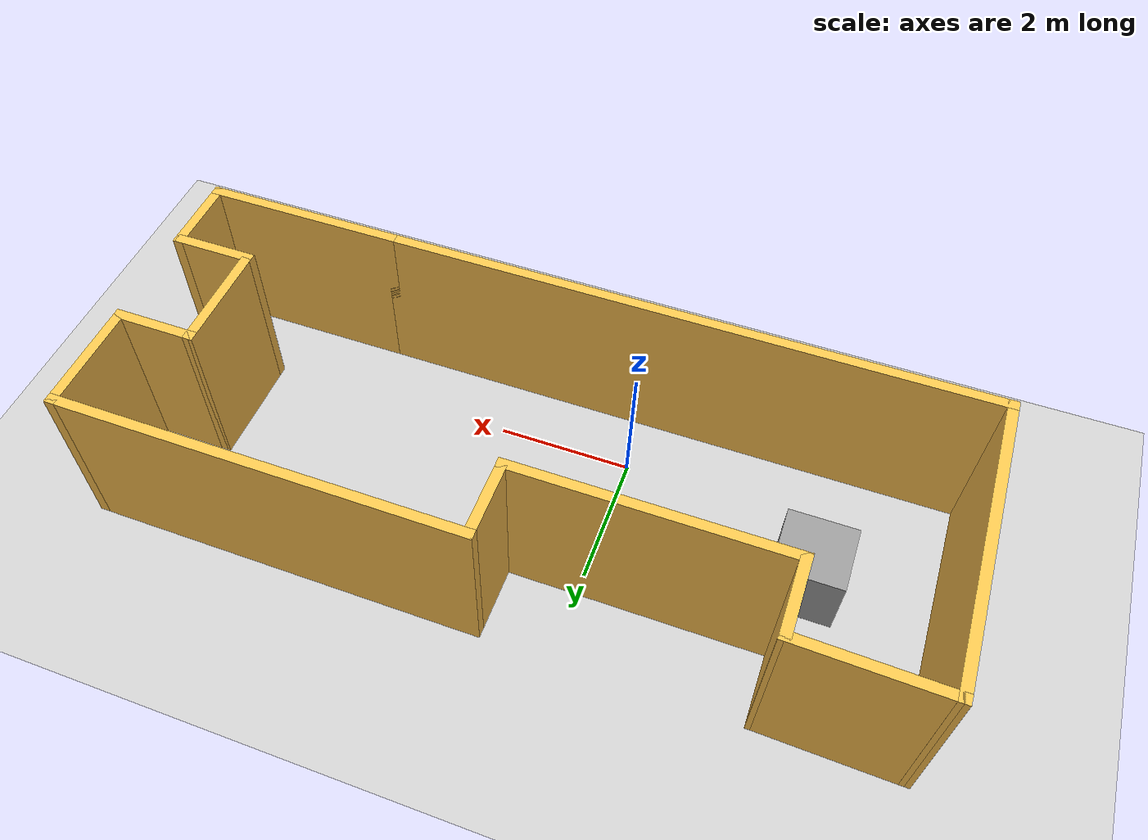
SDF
<sdf version="1.7">
 <world name="default">
  <light name="sun" type="directional">
   <pose>0 0 10 0 -0 0</pose>
   <diffuse>0.8 0.8 0.8 1</diffuse>
   <specular>0.2 0.2 0.2 1</specular>
   <attenuation>
    <range>1000</range>
    <constant>0.9</constant>
    <linear>0.01</linear>
    <quadratic>0.001</quadratic>
   </attenuation>
   <direction>-0.5 0.1 -0.9</direction>
   <spot><inner_angle>0</inner_angle><outer_angle>0</outer_angle><falloff>0</falloff></spot>
  </light>
  <model name="ground_plane">
   <static>1</static>
   <link name="link">
    <collision name="collision">
     <geometry><plane><normal>0 0 1</normal><size>100 100</size></plane></geometry>
     <surface>
      <contact><collide_bitmask>65535</collide_bitmask></contact>
      <friction><ode><mu>100</mu><mu2>50</mu2></ode></friction>
     </surface>
    </collision>
    <visual name="visual">
     <cast_shadows>0</cast_shadows>
     <geometry><plane><normal>0 0 1</normal><size>100 100</size></plane></geometry>
     <material>
      <script><uri>file://media/materials/scripts/gazebo.material</uri><name>Gazebo/Grey</name></script>
     </material>
    </visual>
   </link>
  </model>
  <gravity>0 0 -9.8</gravity>
  <magnetic_field>6e-06 2.3e-05 -4.2e-05</magnetic_field>
  <atmosphere type="adiabatic"/>
  <physics type="ode">
   <max_step_size>0.001</max_step_size>
   <real_time_factor>1</real_time_factor>
   <real_time_update_rate>1000</real_time_update_rate>
  </physics>
  <scene><ambient>0.4 0.4 0.4 1</ambient><background>0.7 0.7 0.7 1</background><shadows>1</shadows></scene>
  <spherical_coordinates>
   <surface_model>EARTH_WGS84</surface_model>
   <latitude_deg>0</latitude_deg>
   <longitude_deg>0</longitude_deg>
   <elevation>0</elevation>
   <heading_deg>0</heading_deg>
  </spherical_coordinates>
  <model name="mobi">
   <pose>1.08908 1.21592 0 0 -0 0</pose>
   <link name="Wall_0">
    <collision name="Wall_0_Collision">
     <geometry><box><size>9 0.15 2.5</size></box></geometry>
     <pose>0 0 1.25 0 -0 0</pose>
    </collision>
    <visual name="Wall_0_Visual">
     <pose>0 0 1.25 0 -0 0</pose>
     <geometry><box><size>9 0.15 2.5</size></box></geometry>
     <material>
      <script><uri>file://media/materials/scripts/gazebo.material</uri><name>Gazebo/Grey</name></script>
      <ambient>1 0.764706 0.305882 1</ambient>
     </material>
     <meta><layer>0</layer></meta>
    </visual>
    <pose>-1.42407 -2.17592 0 0 -0 0</pose>
   </link>
   <link name="Wall_10">
    <collision name="Wall_10_Collision">
     <geometry><box><size>1.75 0.15 2.5</size></box></geometry>
     <pose>0 0 1.25 0 -0 0</pose>
    </collision>
    <visual name="Wall_10_Visual">
     <pose>0 0 1.25 0 -0 0</pose>
     <geometry><box><size>1.75 0.15 2.5</size></box></geometry>
     <material>
      <script><uri>file://media/materials/scripts/gazebo.material</uri><name>Gazebo/Grey</name></script>
      <ambient>1 0.764706 0.305882 1</ambient>
     </material>
     <meta><layer>0</layer></meta>
    </visual>
    <pose>4.75093 -0.275925 0 0 -0 1.5708</pose>
   </link>
   <link name="Wall_11">
    <collision name="Wall_11_Collision">
     <geometry><box><size>1.25 0.15 2.5</size></box></geometry>
     <pose>0 0 1.25 0 -0 0</pose>
    </collision>
    <visual name="Wall_11_Visual">
     <pose>0 0 1.25 0 -0 0</pose>
     <geometry><box><size>1.25 0.15 2.5</size></box></geometry>
     <material>
      <script><uri>file://media/materials/scripts/gazebo.material</uri><name>Gazebo/Grey</name></script>
      <ambient>1 0.764706 0.305882 1</ambient>
     </material>
     <meta><layer>0</layer></meta>
    </visual>
    <pose>5.30093 0.524075 0 0 -0 0</pose>
   </link>
   <link name="Wall_12">
    <collision name="Wall_12_Collision">
     <geometry><box><size>1.75 0.15 2.5</size></box></geometry>
     <pose>0 0 1.25 0 -0 0</pose>
    </collision>
    <visual name="Wall_12_Visual">
     <pose>0 0 1.25 0 -0 0</pose>
     <geometry><box><size>1.75 0.15 2.5</size></box></geometry>
     <material>
      <script><uri>file://media/materials/scripts/gazebo.material</uri><name>Gazebo/Grey</name></script>
      <ambient>1 0.764706 0.305882 1</ambient>
     </material>
     <meta><layer>0</layer></meta>
    </visual>
    <pose>5.85093 1.32407 0 0 -0 1.5708</pose>
   </link>
   <link name="Wall_13">
    <collision name="Wall_13_Collision">
     <geometry><box><size>6 0.15 2.5</size></box></geometry>
     <pose>0 0 1.25 0 -0 0</pose>
    </collision>
    <visual name="Wall_13_Visual">
     <pose>0 0 1.25 0 -0 0</pose>
     <geometry><box><size>6 0.15 2.5</size></box></geometry>
     <material>
      <script><uri>file://media/materials/scripts/gazebo.material</uri><name>Gazebo/Grey</name></script>
      <ambient>1 0.764706 0.305882 1</ambient>
     </material>
     <meta><layer>0</layer></meta>
    </visual>
    <pose>2.92592 2.12407 0 0 -0 3.14159</pose>
   </link>
   <link name="Wall_14">
    <collision name="Wall_14_Collision">
     <geometry><box><size>1.25 0.15 2.5</size></box></geometry>
     <pose>0 0 1.25 0 -0 0</pose>
    </collision>
    <visual name="Wall_14_Visual">
     <pose>0 0 1.25 0 -0 0</pose>
     <geometry><box><size>1.25 0.15 2.5</size></box></geometry>
     <material>
      <script><uri>file://media/materials/scripts/gazebo.material</uri><name>Gazebo/Grey</name></script>
      <ambient>1 0.764706 0.305882 1</ambient>
     </material>
     <meta><layer>0</layer></meta>
    </visual>
    <pose>0.000925 1.57407 0 0 -0 -1.5708</pose>
   </link>
   <link name="Wall_15">
    <collision name="Wall_15_Collision">
     <geometry><box><size>4 0.15 2.5</size></box></geometry>
     <pose>0 0 1.25 0 -0 0</pose>
    </collision>
    <visual name="Wall_15_Visual">
     <pose>0 0 1.25 0 -0 0</pose>
     <geometry><box><size>4 0.15 2.5</size></box></geometry>
     <material>
      <script><uri>file://media/materials/scripts/gazebo.material</uri><name>Gazebo/Grey</name></script>
      <ambient>1 0.764706 0.305882 1</ambient>
     </material>
     <meta><layer>0</layer></meta>
    </visual>
    <pose>-1.92407 1.02408 0 0 -0 3.14159</pose>
   </link>
   <link name="Wall_16">
    <collision name="Wall_16_Collision">
     <geometry><box><size>1.25 0.15 2.5</size></box></geometry>
     <pose>0 0 1.25 0 -0 0</pose>
    </collision>
    <visual name="Wall_16_Visual">
     <pose>0 0 1.25 0 -0 0</pose>
     <geometry><box><size>1.25 0.15 2.5</size></box></geometry>
     <material>
      <script><uri>file://media/materials/scripts/gazebo.material</uri><name>Gazebo/Grey</name></script>
      <ambient>1 0.764706 0.305882 1</ambient>
     </material>
     <meta><layer>0</layer></meta>
    </visual>
    <pose>-3.84908 1.57407 0 0 -0 1.5708</pose>
   </link>
   <link name="Wall_17">
    <collision name="Wall_17_Collision">
     <geometry><box><size>2.15062 0.15 2.5</size></box></geometry>
     <pose>0 0 1.25 0 -0 0</pose>
    </collision>
    <visual name="Wall_17_Visual">
     <pose>0 0 1.25 0 -0 0</pose>
     <geometry><box><size>2.15062 0.15 2.5</size></box></geometry>
     <material>
      <script><uri>file://media/materials/scripts/gazebo.material</uri><name>Gazebo/Grey</name></script>
      <ambient>1 0.764706 0.305882 1</ambient>
     </material>
     <meta><layer>0</layer></meta>
    </visual>
    <pose>-4.84908 2.14907 0 0 -0 3.1166</pose>
   </link>
   <link name="Wall_18">
    <collision name="Wall_18_Collision">
     <geometry><box><size>4.5 0.15 2.5</size></box></geometry>
     <pose>0 0 1.25 0 -0 0</pose>
    </collision>
    <visual name="Wall_18_Visual">
     <pose>0 0 1.25 0 -0 0</pose>
     <geometry><box><size>4.5 0.15 2.5</size></box></geometry>
     <material>
      <script><uri>file://media/materials/scripts/gazebo.material</uri><name>Gazebo/Grey</name></script>
      <ambient>1 0.764706 0.305882 1</ambient>
     </material>
     <meta><layer>0</layer></meta>
    </visual>
    <pose>-5.84908 -0.000925 0 0 -0 -1.5708</pose>
   </link>
   <link name="Wall_7">
    <collision name="Wall_7_Collision">
     <geometry><box><size>3 0.15 2.5</size></box></geometry>
     <pose>0 0 1.25 0 -0 0</pose>
    </collision>
    <visual name="Wall_7_Visual">
     <pose>0 0 1.25 0 -0 0</pose>
     <geometry><box><size>3 0.15 2.5</size></box></geometry>
     <material>
      <script><uri>file://media/materials/scripts/gazebo.material</uri><name>Gazebo/Grey</name></script>
      <ambient>1 0.764706 0.305882 1</ambient>
     </material>
     <meta><layer>0</layer></meta>
    </visual>
    <pose>4.42593 -2.17592 0 0 -0 0</pose>
   </link>
   <link name="Wall_8">
    <collision name="Wall_8_Collision">
     <geometry><box><size>1.25 0.15 2.5</size></box></geometry>
     <pose>0 0 1.25 0 -0 0</pose>
    </collision>
    <visual name="Wall_8_Visual">
     <pose>0 0 1.25 0 -0 0</pose>
     <geometry><box><size>1.25 0.15 2.5</size></box></geometry>
     <material>
      <script><uri>file://media/materials/scripts/gazebo.material</uri><name>Gazebo/Grey</name></script>
      <ambient>1 0.764706 0.305882 1</ambient>
     </material>
     <meta><layer>0</layer></meta>
    </visual>
    <pose>5.85093 -1.62593 0 0 -0 1.5708</pose>
   </link>
   <link name="Wall_9">
    <collision name="Wall_9_Collision">
     <geometry><box><size>1.25 0.15 2.5</size></box></geometry>
     <pose>0 0 1.25 0 -0 0</pose>
    </collision>
    <visual name="Wall_9_Visual">
     <pose>0 0 1.25 0 -0 0</pose>
     <geometry><box><size>1.25 0.15 2.5</size></box></geometry>
     <material>
      <script><uri>file://media/materials/scripts/gazebo.material</uri><name>Gazebo/Grey</name></script>
      <ambient>1 0.764706 0.305882 1</ambient>
     </material>
     <meta><layer>0</layer></meta>
    </visual>
    <pose>5.30093 -1.07593 0 0 -0 3.14159</pose>
   </link>
   <static>1</static>
  </model>
  <model name="unit_box">
   <pose>-2.92434 1.07557 0.5 0 -0 0</pose>
   <link name="link">
    <inertial>
     <mass>1</mass>
     <inertia>
      <ixx>0.166667</ixx>
      <ixy>0</ixy>
      <ixz>0</ixz>
      <iyy>0.166667</iyy>
      <iyz>0</iyz>
      <izz>0.166667</izz>
     </inertia>
    </inertial>
    <collision name="collision"><geometry><box><size>1 1 1</size></box></geometry></collision>
    <visual name="visual">
     <geometry><box><size>1 1 1</size></box></geometry>
     <material>
      <script><name>Gazebo/Grey</name><uri>file://media/materials/scripts/gazebo.material</uri></script>
     </material>
    </visual>
   </link>
  </model>
 </world>
</sdf>
